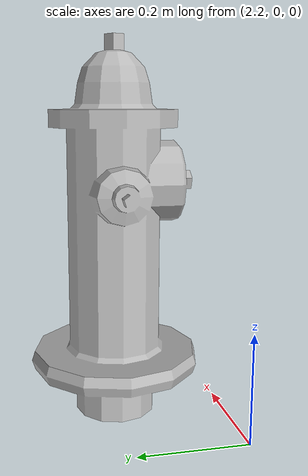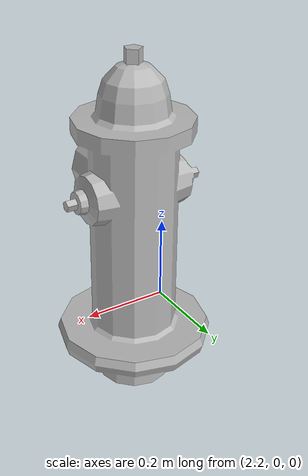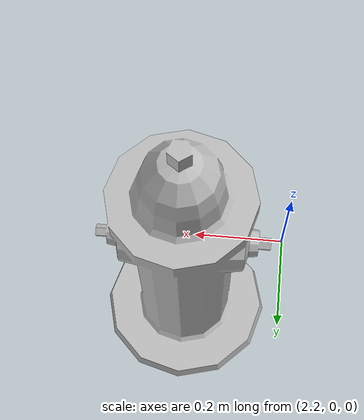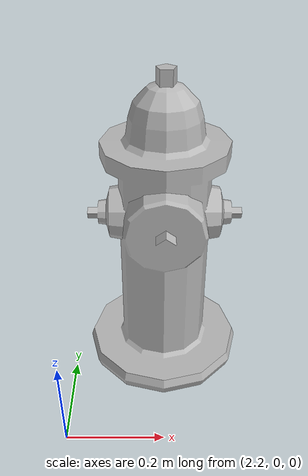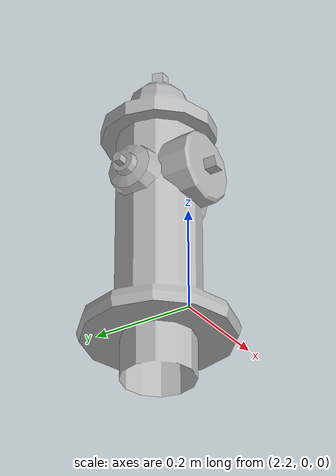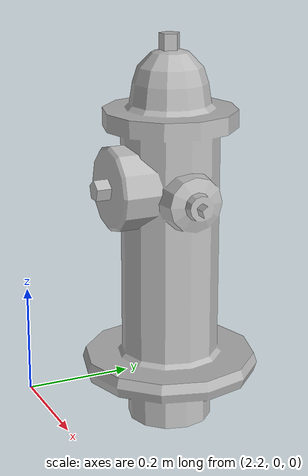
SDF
<?xml version="1.0" ?>
<sdf version="1.5">
  <model name="fire_hydrant">
    <static>true</static>
    <link name="link">
      <collision name="collision">
        <pose>2.4 0.20 0 0 0 0</pose>
        <geometry>
          <mesh>
            <scale>0.75 0.75 0.75</scale>
            <uri>meshes/fire_hydrant.dae</uri>
          </mesh>
        </geometry>
      </collision>
      <visual name="visual">
        <pose>2.4 0.20 0 0 0 0</pose>
        <geometry>
          <mesh>
            <scale>0.75 0.75 0.75</scale>
            <uri>meshes/fire_hydrant.dae</uri>
          </mesh>
        </geometry>
      </visual>
    </link>
  </model>
</sdf>
